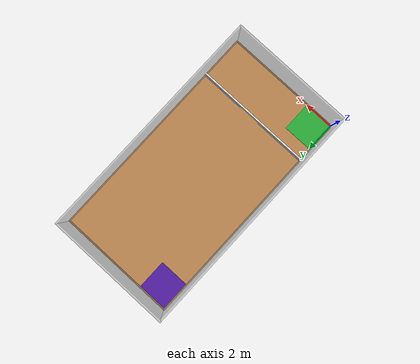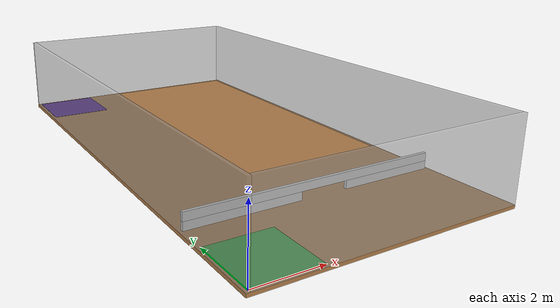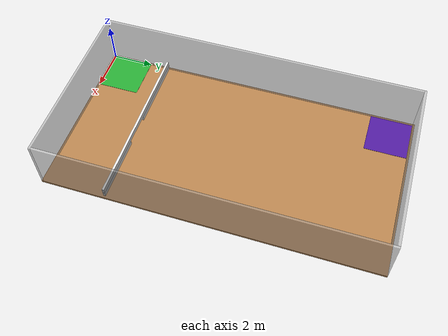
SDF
<sdf version="1.6">
 <world name="default">
  <light name="sun" type="directional">
   <pose>0 0 10 0 -0 0</pose>
   <diffuse>0.8 0.8 0.8 1</diffuse>
   <specular>0.2 0.2 0.2 1</specular>
   <attenuation>
    <range>1000</range>
    <constant>0.9</constant>
    <linear>0.01</linear>
    <quadratic>0.001</quadratic>
   </attenuation>
   <direction>-0.5 0.1 -0.9</direction>
  </light>
  <physics name="default_physics" default="0" type="ode">
   <ode>
    <solver>
     <type>quick</type>
     <iters>10</iters>
     <sor>1.3</sor>
     <use_dynamic_moi_rescaling>0</use_dynamic_moi_rescaling>
    </solver>
    <constraints>
     <cfm>0</cfm>
     <erp>0.2</erp>
     <contact_max_correcting_vel>100</contact_max_correcting_vel>
     <contact_surface_layer>0.001</contact_surface_layer>
    </constraints>
   </ode>
   <max_step_size>0.004</max_step_size>
   <real_time_factor>1</real_time_factor>
   <real_time_update_rate>250</real_time_update_rate>
  </physics>
  <model name="box_1">
   <pose>4.05 -0.05 1.25 0 -0 0</pose>
   <static>1</static>
   <link name="link">
    <collision name="collision"><geometry><box><size>8.1 0.1 2.5</size></box></geometry></collision>
    <visual name="visual">
     <geometry><box><size>8.1 0.1 2.5</size></box></geometry>
     <material>
      <script><name>Gazebo/GreyTransparent</name><uri>file://media/materials/scripts/gazebo.material</uri></script>
     </material>
    </visual>
   </link>
  </model>
  <model name="box_2">
   <pose>8.05 7.8 1.25 0 -0 0</pose>
   <static>1</static>
   <link name="link">
    <collision name="collision"><geometry><box><size>0.1 15.6 2.5</size></box></geometry></collision>
    <visual name="visual">
     <geometry><box><size>0.1 15.6 2.5</size></box></geometry>
     <material>
      <script><name>Gazebo/GreyTransparent</name><uri>file://media/materials/scripts/gazebo.material</uri></script>
     </material>
    </visual>
   </link>
  </model>
  <model name="box_3">
   <pose>3.95 15.55 1.25 0 -0 0</pose>
   <static>1</static>
   <link name="link">
    <collision name="collision"><geometry><box><size>8.1 0.1 2.5</size></box></geometry></collision>
    <visual name="visual">
     <geometry><box><size>8.1 0.1 2.5</size></box></geometry>
     <material>
      <script><name>Gazebo/GreyTransparent</name><uri>file://media/materials/scripts/gazebo.material</uri></script>
     </material>
    </visual>
   </link>
  </model>
  <model name="box_4">
   <pose>-0.05 7.7 1.25 0 -0 0</pose>
   <static>1</static>
   <link name="link">
    <collision name="collision"><geometry><box><size>0.1 15.6 2.5</size></box></geometry></collision>
    <visual name="visual">
     <geometry><box><size>0.1 15.6 2.5</size></box></geometry>
     <material>
      <script><name>Gazebo/GreyTransparent</name><uri>file://media/materials/scripts/gazebo.material</uri></script>
     </material>
    </visual>
   </link>
  </model>
  <model name="box_5">
   <pose>4 7.75 -0.05 0 -0 0</pose>
   <static>1</static>
   <link name="link">
    <collision name="collision"><geometry><box><size>8.2 15.7 0.1</size></box></geometry></collision>
    <visual name="visual">
     <geometry><box><size>8.2 15.7 0.1</size></box></geometry>
     <material>
      <script><name>Gazebo/WoodFloor</name><uri>file://media/materials/scripts/gazebo.material</uri></script>
     </material>
    </visual>
   </link>
  </model>
  <model name="box_13">
   <pose>1 1 0.005 0 -0 0</pose>
   <static>1</static>
   <link name="link">
    <collision name="collision"><geometry><box><size>2 2 0.01</size></box></geometry></collision>
    <visual name="visual">
     <geometry><box><size>2 2 0.01</size></box></geometry>
     <material>
      <script><name>Gazebo/Green</name><uri>file://media/materials/scripts/gazebo.material</uri></script>
     </material>
    </visual>
   </link>
  </model>
  <model name="box_14">
   <pose>1.0055 14.491 0.005 0 -0 0</pose>
   <static>1</static>
   <link name="link">
    <collision name="collision"><geometry><box><size>2 2 0.01</size></box></geometry></collision>
    <visual name="visual">
     <geometry><box><size>2 2 0.01</size></box></geometry>
     <material>
      <script><name>Gazebo/Indigo</name><uri>file://media/materials/scripts/gazebo.material</uri></script>
     </material>
    </visual>
   </link>
  </model>
  <model name="box_15">
   <pose>4 2.95 0.375 0 -0 0</pose>
   <static>1</static>
   <link name="link">
    <collision name="collision"><geometry><box><size>8 0.1 0.25</size></box></geometry></collision>
    <visual name="visual">
     <geometry><box><size>8 0.1 0.25</size></box></geometry>
     <material>
      <script><name>Gazebo/White</name><uri>file://media/materials/scripts/gazebo.material</uri></script>
     </material>
    </visual>
   </link>
  </model>
  <model name="box_15_h1">
   <pose>1.75 2.95 0.125 0 -0 0</pose>
   <static>1</static>
   <link name="link">
    <collision name="collision"><geometry><box><size>3.5 0.1 0.25</size></box></geometry></collision>
    <visual name="visual">
     <geometry><box><size>3.5 0.1 0.25</size></box></geometry>
     <material>
      <script><name>Gazebo/White</name><uri>file://media/materials/scripts/gazebo.material</uri></script>
     </material>
    </visual>
   </link>
  </model>
  <model name="box_15_h2">
   <pose>6.5 2.95 0.125 0 -0 0</pose>
   <static>1</static>
   <link name="link">
    <collision name="collision"><geometry><box><size>3 0.1 0.25</size></box></geometry></collision>
    <visual name="visual">
     <geometry><box><size>3 0.1 0.25</size></box></geometry>
     <material>
      <script><name>Gazebo/White</name><uri>file://media/materials/scripts/gazebo.material</uri></script>
     </material>
    </visual>
   </link>
  </model>
  <model name="box_21">
   <pose>1.75 2.95 1 0 -0 0</pose>
   <static>1</static>
   <link name="link">
    <collision name="collision"><geometry><box><size>1.5 0.1 1</size></box></geometry></collision>
    <visual name="visual">
     <geometry><box><size>1.5 0.1 1</size></box></geometry>
     <material>
      <script><name>Gazebo/Grey</name><uri>file://media/materials/scripts/gazebo.material</uri></script>
     </material>
     <transparency>1</transparency>
    </visual>
   </link>
  </model>
  <model name="box_22">
   <pose>4.25 2.95 1 0 -0 0</pose>
   <static>1</static>
   <link name="link">
    <collision name="collision"><geometry><box><size>1.5 0.1 1</size></box></geometry></collision>
    <visual name="visual">
     <geometry><box><size>1.5 0.1 1</size></box></geometry>
     <material>
      <script><name>Gazebo/Grey</name><uri>file://media/materials/scripts/gazebo.material</uri></script>
     </material>
     <transparency>1</transparency>
    </visual>
   </link>
  </model>
  <gravity>0 0 -9.8066</gravity>
  <magnetic_field>6e-06 2.3e-05 -4.2e-05</magnetic_field>
  <atmosphere type="adiabatic"/>
  <scene><ambient>0.4 0.4 0.4 1</ambient><background>0.7 0.7 0.7 1</background><shadows>1</shadows></scene>
  <audio><device>default</device></audio>
  <spherical_coordinates>
   <surface_model>EARTH_WGS84</surface_model>
   <latitude_deg>0</latitude_deg>
   <longitude_deg>0</longitude_deg>
   <elevation>0</elevation>
   <heading_deg>0</heading_deg>
  </spherical_coordinates>
 </world>
</sdf>
